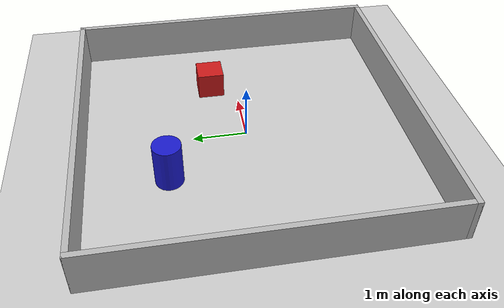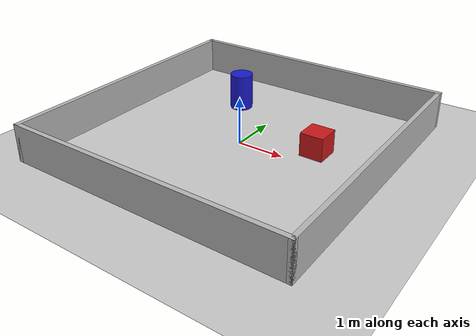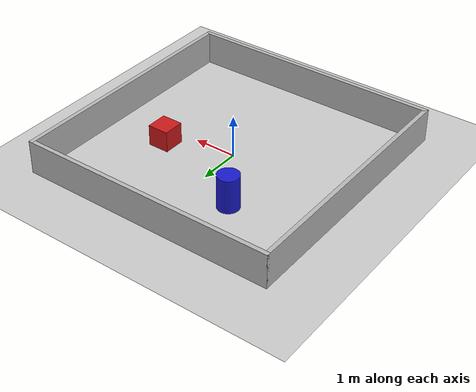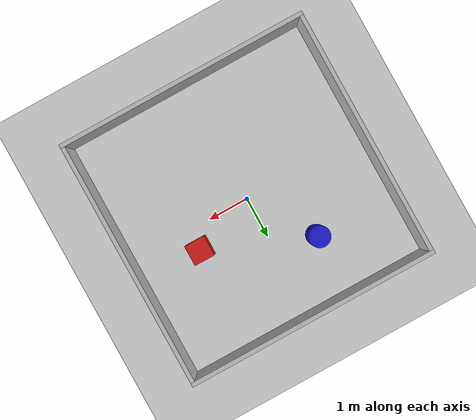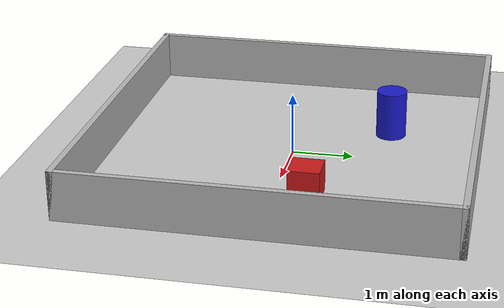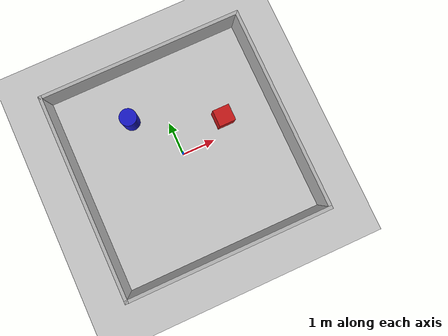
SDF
<?xml version="1.0" ?>
<sdf version="1.5">
  <world name="default">
    <!-- A global light source -->
    <include>
      <uri>model://sun</uri>
    </include>
    <!-- A ground plane -->
    <include>
      <uri>model://ground_plane</uri>
    </include>
        <!-- Obstacle 1: red box -->
    <model name="box_obstacle">
      <static>true</static>
      <pose>1.5 0.5 0.25 0 0 0</pose>
      <link name="link">
        <collision name="collision"><geometry><box><size>0.5 0.5 0.5</size></box></geometry></collision>
        <visual name="visual">
          <geometry><box><size>0.5 0.5 0.5</size></box></geometry>
          <material><ambient>0.8 0.1 0.1 1</ambient><diffuse>0.8 0.1 0.1 1</diffuse></material>
        </visual>
      </link>
    </model>

    <!-- Obstacle 2: blue cylinder -->
    <model name="cylinder_obstacle">
      <static>true</static>
      <pose>-1.0 1.5 0.4 0 0 0</pose>
      <link name="link">
        <collision name="collision"><geometry><cylinder><radius>0.25</radius><length>0.8</length></cylinder></geometry></collision>
        <visual name="visual">
          <geometry><cylinder><radius>0.25</radius><length>0.8</length></cylinder></geometry>
          <material><ambient>0.1 0.1 0.8 1</ambient><diffuse>0.1 0.1 0.8 1</diffuse></material>
        </visual>
      </link>
    </model>

    <!-- Optional but recommended for SLAM: 6x6 m room -->
    <model name="walls">
      <static>true</static>
      <link name="link">
        <collision name="n"><pose>0 3 0.4 0 0 0</pose><geometry><box><size>6.1 0.1 0.8</size></box></geometry></collision>
        <visual name="n_v"><pose>0 3 0.4 0 0 0</pose><geometry><box><size>6.1 0.1 0.8</size></box></geometry></visual>
        <collision name="s"><pose>0 -3 0.4 0 0 0</pose><geometry><box><size>6.1 0.1 0.8</size></box></geometry></collision>
        <visual name="s_v"><pose>0 -3 0.4 0 0 0</pose><geometry><box><size>6.1 0.1 0.8</size></box></geometry></visual>
        <collision name="e"><pose>3 0 0.4 0 0 0</pose><geometry><box><size>0.1 6.1 0.8</size></box></geometry></collision>
        <visual name="e_v"><pose>3 0 0.4 0 0 0</pose><geometry><box><size>0.1 6.1 0.8</size></box></geometry></visual>
        <collision name="w"><pose>-3 0 0.4 0 0 0</pose><geometry><box><size>0.1 6.1 0.8</size></box></geometry></collision>
        <visual name="w_v"><pose>-3 0 0.4 0 0 0</pose><geometry><box><size>0.1 6.1 0.8</size></box></geometry></visual>
      </link>
    </model>
  </world>
</sdf>
